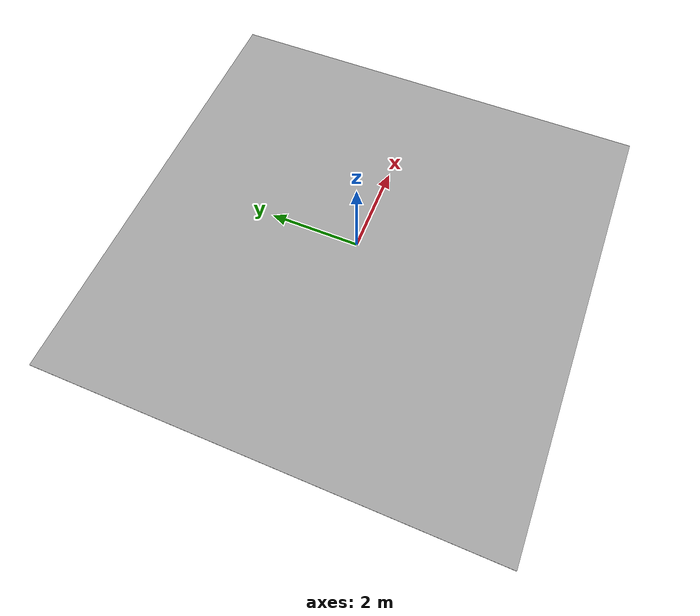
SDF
<?xml version="1.0" ?>
<sdf version="1.4">
  <world name="default">

    <physics type="dart">
      <!-- runs simuation as fast as possible -->
      <real_time_update_rate>0</real_time_update_rate>
      <dart>
        <collision_detector>bullet</collision_detector>
      </dart>
    </physics>

    <include>
      <uri>model://sun</uri>
    </include>

    <!-- using a very flat box as a ground plane which is slightly offset at z axis
         because simulation is about 4 times faster than with standard ground_plane
         anchored in origin. -->
    <model name="ground_plane">
      <static>true</static>
      <link name="link">
        <collision name="collision">
          <geometry>
            <box>
              <size>10 10 0.01 0 0 0</size>
            </box>
          </geometry>
          <surface>
            <friction>
              <ode>
                <mu>100</mu>
                <mu2>50</mu2>
              </ode>
            </friction>
          </surface>
        </collision>
        <visual name="visual">
          <geometry>
            <box>
              <size>10 10 0.01 0 0 0</size>
            </box>
          </geometry>
          <material>
            <script>
              <uri>file://media/materials/scripts/gazebo.material</uri>
              <name>Gazebo/Grey</name>
            </script>
          </material>
        </visual>
      </link>
      <pose>0 0 -0.05 0 0 0</pose>
    </model>

    <!-- modify camera view point -->
    <gui>
      <camera name="user_camera">
        <!-- zoomed on reflex -->
        <!-- zoomed on whole grapsing situation (with cylinder) -->
        <pose>0.5 0.5 0.43 0 0.57 -2.47</pose>
      </camera>
    </gui>
  </world>
</sdf>
